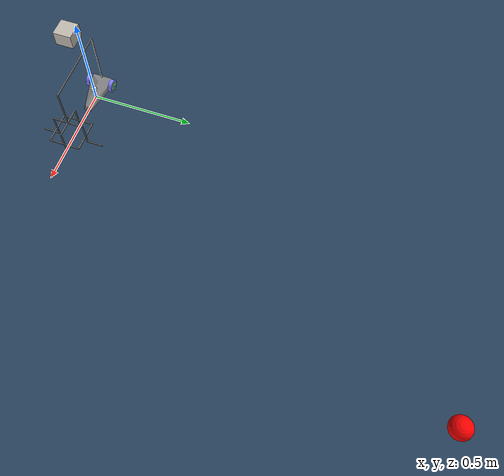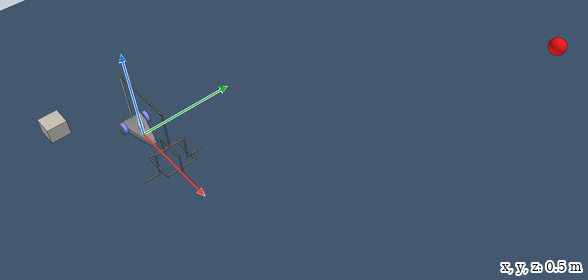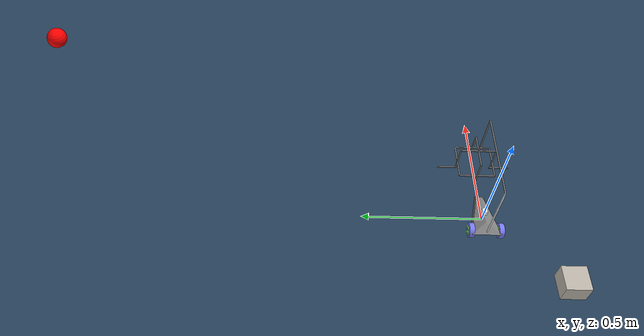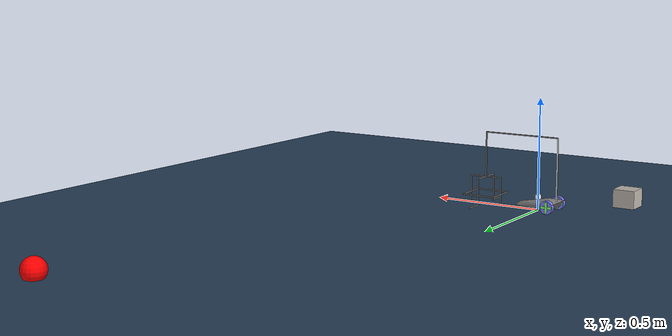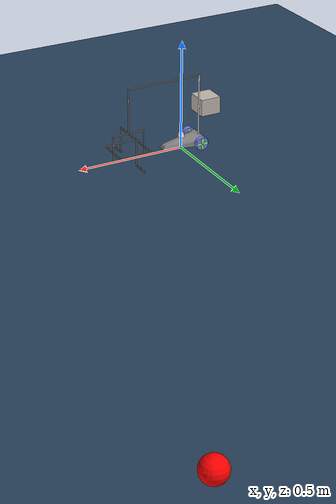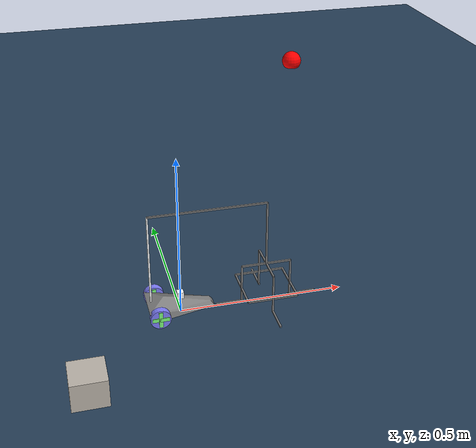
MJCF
<mujoco>
  <compiler autolimits="true" meshdir="assets/meshes" texturedir="assets/textures"/>

  <asset>
    <!-- floor -->
    <texture name="grid" type="2d" builtin="checker" width="512" height="512" rgb1=".1 .2 .3" rgb2=".2 .3 .4"/>
    <material name="grid" texture="grid" texrepeat="1 1" texuniform="true" reflectance="0"/>

    <!-- aruco markers -->
    <texture name="markers_1" type="cube" fileright="marker_0.png" fileup="marker_1.png" fileleft="marker_2.png" filedown="marker_3.png" filefront="marker_4.png" fileback="marker_5.png"/>
    <material name="cube_markers_1" texture="markers_1" texuniform="true"/>

    <texture name="markers_2" type="cube" fileright="marker_6.png" fileup="marker_7.png" fileleft="marker_8.png" filedown="marker_9.png" filefront="marker_10.png" fileback="marker_11.png"/>
    <material name="cube_markers_2" texture="markers_2" texuniform="true"/>

    <!-- car -->
    <mesh name="chassis" scale=".01 .006 .0015" vertex="9   2   0
                                                          -10  10  10
                                                           9  -2   0
                                                           10  3  -10
                                                           10 -3  -10
                                                          -8   10 -10
                                                          -10 -10  10
                                                          -8  -10 -10
                                                          -5   0   20"/>
  </asset>

  <!-- default classes -->
  <default>
    <joint damping=".03" actuatorfrcrange="-0.5 0.5"/>

    <default class="decor">
      <site type="box" rgba=".5 1 .5 1"/>
    </default>

    <!-- car wheels -->
    <default class="wheel">
      <geom type="cylinder" size=".03 .01" rgba=".5 .5 1 1"/>
    </default>

    <!-- dash cam rotate control -->
    <default class="rotor">
      <joint type="hinge" axis="0 0 1"/>
    </default>

    <!-- prismatic joint -->
    <default class="prismatic">
      <joint type="slide" axis="0 0 1"/>
    </default>
  </default>

  <!-- world -->
  <worldbody>
    <light name="light1" pos="0 0 2"/>
    <light name="light2" pos="0 2 2"/>
    <light name="light3" pos="2 0 2"/>

    <!-- floor -->
    <geom type="plane" size="3 3 .01" material="grid"/>

    <!-- car -->
    <body name="car" pos="0 0 .03">
      <freejoint/>

      <!-- top light (ie tracks car from above) -->
      <light name="top light" pos="0 0 2" mode="trackcom" diffuse=".4 .4 .4"/>

      <!-- chassis -->
      <geom name="chassis" type="mesh" mesh="chassis"/>

      <!-- front lights -->
      <light name="front light" pos=".1 0 .02" dir="2 0 -1" diffuse="1 1 1"/>

      <!-- head camera (ie shows what's in front of the car) -->
      <!-- prev "camera1" -->
      <camera name="head camera" pos="-.1 0 .05" fovy="90" euler="180 -80 90"/>

      <!-- front wheel -->
      <geom name="front wheel" pos=".08 0 -.015" type="sphere" size=".015" condim="1" priority="1"/>

      <!-- back wheels -->
      <body name="left back wheel" pos="-.07 .06 0" zaxis="0 1 0">
        <joint name="left motor"/>
        <!-- turn and forward ctrl -->

        <geom class="wheel"/>

        <!-- spokes -->
        <site class="decor" size=".006 .025 .012"/>
        <site class="decor" size=".025 .006 .012"/>
      </body>
      <body name="right back wheel" pos="-.07 -.06 0" zaxis="0 1 0">
        <joint name="right motor"/>
        <!-- turn and forward ctrl -->

        <geom class="wheel"/>

        <!-- spokes -->
        <site class="decor" size=".006 .025 .012"/>
        <site class="decor" size=".025 .006 .012"/>
      </body>

      <!-- dash cam camera -->
      <!-- prev "rotational-camera" -->
      <body name="dash cam" pos="0 0 .03">
        <camera name="dash cam" pos="0 0 .03" fovy="90" euler="180 -80 90"/>

        <joint class="rotor" name="dash cam"/>
        <!-- dash cam rotate ctrl -->

        <geom type="box" size="0.01 0.01 0.01" rgba="1 1 1 1"/>
      </body>

      <!-- gripper -->
      <!-- vertical mast -->
      <body name="mast" pos="-.0875 0 0">
        <geom type="box" size=".0025 .0025 .15" pos="0 0 .15" rgba="1 1 1 1"/>

        <!-- horizontal jib -->
        <body name="jib" pos="0 0 .3">
          <joint class="rotor" name="slewing unit" damping=".5"/>

          <geom type="box" size=".175 .0025 .0025" pos=".175 0 0"/>

          <!-- vertical telescopic hoist -->
          <body name="hoist" pos=".35 0 0">
            <joint class="prismatic" name="lift" damping=".5" range="0 0.2025"/>

            <geom type="box" size=".0025 .0025 .10375" pos="0 0 -.10375"/>

            <!-- lifting cage -->
            <include file="lifting_cage.xml"/>
            <!-- There are four movable beams that can slide in and out to   -->
            <!-- close the cage from below. The joints that move them are    -->
            <!-- called trapdoor {front, left, right, back}".                -->
          </body>
        </body>
      </body>
    </body>

    <!-- ball -->
    <body name="target-ball" pos="1 2 .03">
      <inertial pos="0 0 0" mass=".001" diaginertia="1 1 1"/>
      <freejoint/>

      <geom type="sphere" size=".05" rgba="1 0 0 1" friction="0.6 0.3 10"/>
    </body>

    <!-- boxes -->
    <body name="target-box-1" pos="-0.3 -0.3 .03">
      <freejoint/>

      <geom type="box" material="cube_markers_1" size=".05 .05 .05"/>
    </body>
  </worldbody>

  <!-- apply controls to joints -->
  <tendon>
    <!-- apply forward ctrl -->
    <fixed name="forward">
      <joint joint="left motor" coef=".5"/>
      <joint joint="right motor" coef=".5"/>
    </fixed>

    <!-- apply turn ctrl -->
    <fixed name="turn">
      <joint joint="left motor" coef="-.5"/>
      <joint joint="right motor" coef=".5"/>
    </fixed>

    <!-- apply dash cam rotate ctrl -->
    <fixed name="dash cam rotate">
      <joint joint="dash cam" coef=".5"/>
    </fixed>

    <!-- apply jib rotate ctrl -->
    <fixed name="jib rotate">
      <joint joint="slewing unit" coef=".5"/>
    </fixed>

    <!-- apply lift ctrl -->
    <fixed name="lift">
      <joint joint="lift" coef=".5"/>
    </fixed>

    <!-- apply trapdoor close/open ctrl -->
    <fixed name="trapdoor close/open">
      <joint joint="trapdoor front" coef=".5"/>
      <joint joint="trapdoor left" coef=".5"/>
      <joint joint="trapdoor right" coef=".5"/>
      <joint joint="trapdoor back" coef=".5"/>
    </fixed>
  </tendon>

  <!-- preprocess controls -->
  <actuator>
    <!-- TODO: add scale info in distance unit/second -->
    <motor name="forward" tendon="forward" ctrlrange="-1 1"/>

    <!-- TODO: add scale info in degree/second -->
    <motor name="turn" tendon="turn" ctrlrange="-1 1"/>

    <!-- scale: u_w == 0.1 is 90 degrees rotation per second -->
    <motor name="dash cam rotate" tendon="dash cam rotate" ctrlrange="-0.1 0.1" gear="0.942"/>

    <!-- TODO: add scale info in degree/second -->
    <motor name="jib rotate" tendon="jib rotate" ctrlrange="-.1 .1"/>

    <!-- TODO: add scale info in distance unit/second -->
    <motor name="lift" tendon="lift" ctrlrange="-1 1"/>

    <motor name="trapdoor close/open" tendon="trapdoor close/open" ctrlrange="-1 1"/>
  </actuator>

  <!-- sensors at control application points -->
  <sensor>
    <jointactuatorfrc name="left back wheel force total" joint="left motor"/>
    <jointactuatorfrc name="right back wheel force total" joint="right motor"/>
  </sensor>
</mujoco>

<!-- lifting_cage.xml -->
<mujoco>
<body name="gripper_base" pos="0 0 -0.205">
  <geom type="box" size="0.075 0.0025 0.0025 " pos="0 0 0"/>
  <geom type="box" size="0.0025 0.075 0.0025 " pos="0 0 0"/>
  <body name="gripper_right_face" pos="0 -0.075 0">
    <geom type="box" size="0.0025 0.0025 0.06" pos="0 0 -0.06"/>
    <geom type="box" size="0.075 0.0025 0.0025" pos="0 0 -0.0767"/>
    <body name="gripper_right_floor" pos="0 0 -0.12">
      <joint name="trapdoor right" damping="0.5" axis="0 1 0 " type="slide" range="0 0.075"/>
      <geom type="box" size="0.0025 0.0425 0.0025" pos="0 -0.0375 0"/>
    </body>
  </body>
  <body name="gripper_front_face" pos="0.075 0 0">
    <geom type="box" size="0.0025 0.0025 0.06" pos="0 0 -0.06"/>
    <geom type="box" size="0.0025 0.075 0.0025" pos="0 0 -0.0767"/>
    <body name="gripper_front_floor" pos="0 0 -0.12">
      <joint name="trapdoor front" damping="0.5" axis="-1 0 0 " type="slide" range="0 0.075"/>
      <geom type="box" size="0.0425 0.0025 0.0025" pos="0.0375 0 0"/>
    </body>
  </body>
  <body name="gripper_left_face" pos="0 0.075 0">
    <geom type="box" size="0.0025 0.0025 0.06" pos="0 0 -0.06"/>
    <geom type="box" size="0.075 0.0025 0.0025" pos="0 0 -0.0767"/>
    <body name="gripper_left_floor" pos="0 0 -0.12">
      <joint name="trapdoor left" damping="0.5" axis="0 -1 0 " type="slide" range="0 0.075"/>
      <geom type="box" size="0.0025 0.0425 0.0025" pos="0 0.0375 0"/>
    </body>
  </body>
  <body name="gripper_back_face" pos="-0.075 0 0">
    <geom type="box" size="0.0025 0.0025 0.06" pos="0 0 -0.06"/>
    <geom type="box" size="0.0025 0.075 0.0025" pos="0 0 -0.0767"/>
    <body name="gripper_back_floor" pos="0 0 -0.12">
      <joint name="trapdoor back" damping="0.5" axis="1 0 0" type="slide" range="0 0.075"/>
      <geom type="box" size="0.0425 0.0025 0.0025" pos="-0.0375 0 0"/>
    </body>
  </body>
</body>
</mujoco>
